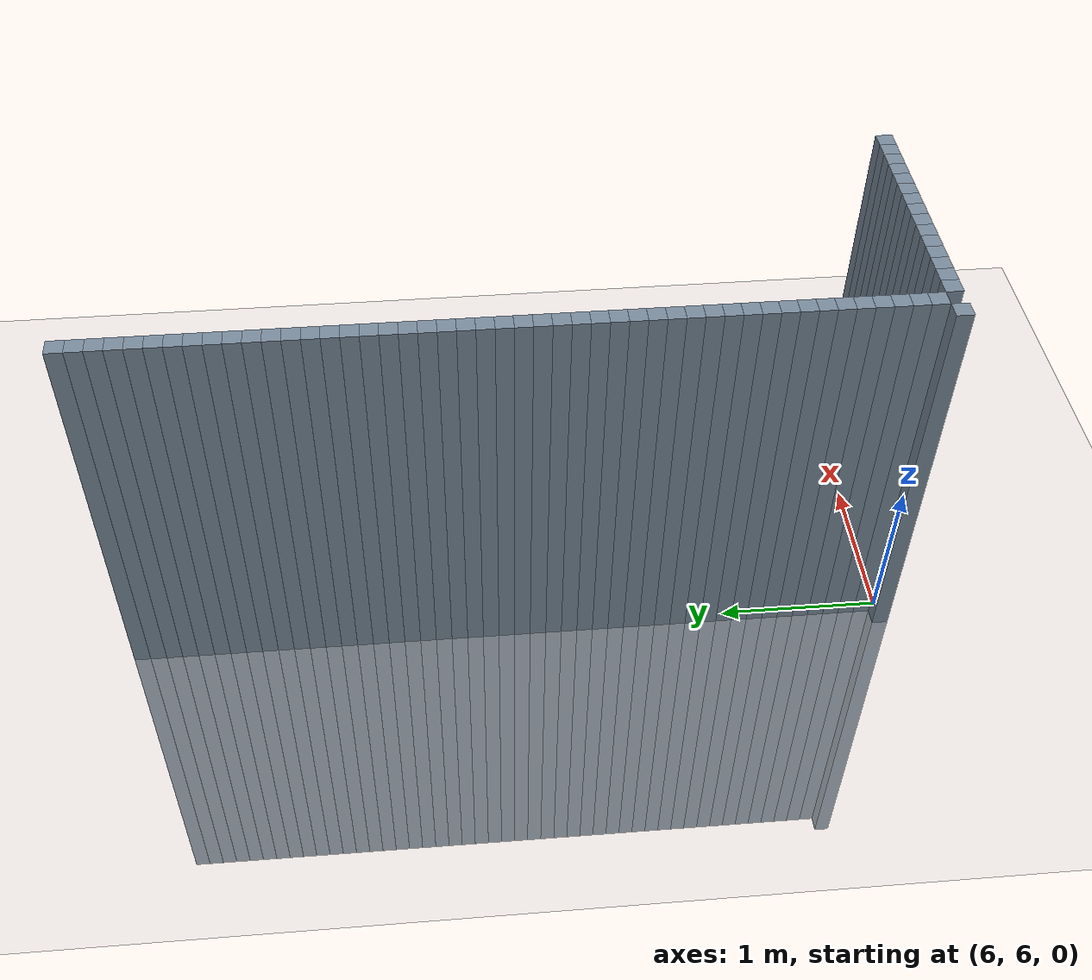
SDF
<sdf version="1.6">
 <world name="default">
  <model name="ground_plane">
   <static>1</static>
   <link name="link">
    <collision name="collision">
     <geometry><plane><normal>0 0 1</normal><size>100 100</size></plane></geometry>
     <surface><friction><ode><mu>100</mu><mu2>50</mu2></ode></friction></surface>
    </collision>
    <visual name="visual">
     <cast_shadows>0</cast_shadows>
     <geometry><plane><normal>0 0 1</normal><size>100 100</size></plane></geometry>
     <material>
      <script><uri>file://media/materials/scripts/gazebo.material</uri><name>Gazebo/Grey</name></script>
     </material>
    </visual>
   </link>
  </model>
  <model name="unit_cylinder_178">
   <static>1</static>
   <pose>5.9 6 0 0 -0 0</pose>
   <link name="link">
    <inertial>
     <mass>1</mass>
     <inertia><ixx>0.145833</ixx><ixy>0</ixy><ixz>0</ixz><iyy>0.145833</iyy><iyz>0</iyz><izz>0.125</izz></inertia>
    </inertial>
    <collision name="collision"><geometry><box><size>0.1 0.1 5</size></box></geometry></collision>
    <visual name="visual">
     <geometry><box><size>0.1 0.1 5</size></box></geometry>
     <material><ambient>0.466667 0.533333 0.6 1</ambient><diffuse>0.466667 0.533333 0.6 1</diffuse></material>
     <material>
      <script><name>Gazebo/Grey</name><uri>file://media/materials/scripts/gazebo.material</uri></script>
     </material>
    </visual>
   </link>
  </model>
  <model name="unit_cylinder_242">
   <static>1</static>
   <pose>6 6.1 0 0 -0 0</pose>
   <link name="link">
    <inertial>
     <mass>1</mass>
     <inertia><ixx>0.145833</ixx><ixy>0</ixy><ixz>0</ixz><iyy>0.145833</iyy><iyz>0</iyz><izz>0.125</izz></inertia>
    </inertial>
    <collision name="collision"><geometry><box><size>0.1 0.1 5</size></box></geometry></collision>
    <visual name="visual">
     <geometry><box><size>0.1 0.1 5</size></box></geometry>
     <material><ambient>0.466667 0.533333 0.6 1</ambient><diffuse>0.466667 0.533333 0.6 1</diffuse></material>
     <material>
      <script><name>Gazebo/Grey</name><uri>file://media/materials/scripts/gazebo.material</uri></script>
     </material>
    </visual>
   </link>
  </model>
  <model name="unit_cylinder_243">
   <static>1</static>
   <pose>6 6.2 0 0 -0 0</pose>
   <link name="link">
    <inertial>
     <mass>1</mass>
     <inertia><ixx>0.145833</ixx><ixy>0</ixy><ixz>0</ixz><iyy>0.145833</iyy><iyz>0</iyz><izz>0.125</izz></inertia>
    </inertial>
    <collision name="collision"><geometry><box><size>0.1 0.1 5</size></box></geometry></collision>
    <visual name="visual">
     <geometry><box><size>0.1 0.1 5</size></box></geometry>
     <material><ambient>0.466667 0.533333 0.6 1</ambient><diffuse>0.466667 0.533333 0.6 1</diffuse></material>
     <material>
      <script><name>Gazebo/Grey</name><uri>file://media/materials/scripts/gazebo.material</uri></script>
     </material>
    </visual>
   </link>
  </model>
  <model name="unit_cylinder_244">
   <static>1</static>
   <pose>6 6.3 0 0 -0 0</pose>
   <link name="link">
    <inertial>
     <mass>1</mass>
     <inertia><ixx>0.145833</ixx><ixy>0</ixy><ixz>0</ixz><iyy>0.145833</iyy><iyz>0</iyz><izz>0.125</izz></inertia>
    </inertial>
    <collision name="collision"><geometry><box><size>0.1 0.1 5</size></box></geometry></collision>
    <visual name="visual">
     <geometry><box><size>0.1 0.1 5</size></box></geometry>
     <material><ambient>0.466667 0.533333 0.6 1</ambient><diffuse>0.466667 0.533333 0.6 1</diffuse></material>
     <material>
      <script><name>Gazebo/Grey</name><uri>file://media/materials/scripts/gazebo.material</uri></script>
     </material>
    </visual>
   </link>
  </model>
  <model name="unit_cylinder_245">
   <static>1</static>
   <pose>6 6.4 0 0 -0 0</pose>
   <link name="link">
    <inertial>
     <mass>1</mass>
     <inertia><ixx>0.145833</ixx><ixy>0</ixy><ixz>0</ixz><iyy>0.145833</iyy><iyz>0</iyz><izz>0.125</izz></inertia>
    </inertial>
    <collision name="collision"><geometry><box><size>0.1 0.1 5</size></box></geometry></collision>
    <visual name="visual">
     <geometry><box><size>0.1 0.1 5</size></box></geometry>
     <material><ambient>0.466667 0.533333 0.6 1</ambient><diffuse>0.466667 0.533333 0.6 1</diffuse></material>
     <material>
      <script><name>Gazebo/Grey</name><uri>file://media/materials/scripts/gazebo.material</uri></script>
     </material>
    </visual>
   </link>
  </model>
  <model name="unit_cylinder_246">
   <static>1</static>
   <pose>6 6.5 0 0 -0 0</pose>
   <link name="link">
    <inertial>
     <mass>1</mass>
     <inertia><ixx>0.145833</ixx><ixy>0</ixy><ixz>0</ixz><iyy>0.145833</iyy><iyz>0</iyz><izz>0.125</izz></inertia>
    </inertial>
    <collision name="collision"><geometry><box><size>0.1 0.1 5</size></box></geometry></collision>
    <visual name="visual">
     <geometry><box><size>0.1 0.1 5</size></box></geometry>
     <material><ambient>0.466667 0.533333 0.6 1</ambient><diffuse>0.466667 0.533333 0.6 1</diffuse></material>
     <material>
      <script><name>Gazebo/Grey</name><uri>file://media/materials/scripts/gazebo.material</uri></script>
     </material>
    </visual>
   </link>
  </model>
  <model name="unit_cylinder_247">
   <static>1</static>
   <pose>6 6.6 0 0 -0 0</pose>
   <link name="link">
    <inertial>
     <mass>1</mass>
     <inertia><ixx>0.145833</ixx><ixy>0</ixy><ixz>0</ixz><iyy>0.145833</iyy><iyz>0</iyz><izz>0.125</izz></inertia>
    </inertial>
    <collision name="collision"><geometry><box><size>0.1 0.1 5</size></box></geometry></collision>
    <visual name="visual">
     <geometry><box><size>0.1 0.1 5</size></box></geometry>
     <material><ambient>0.466667 0.533333 0.6 1</ambient><diffuse>0.466667 0.533333 0.6 1</diffuse></material>
     <material>
      <script><name>Gazebo/Grey</name><uri>file://media/materials/scripts/gazebo.material</uri></script>
     </material>
    </visual>
   </link>
  </model>
  <model name="unit_cylinder_248">
   <static>1</static>
   <pose>6 6.7 0 0 -0 0</pose>
   <link name="link">
    <inertial>
     <mass>1</mass>
     <inertia><ixx>0.145833</ixx><ixy>0</ixy><ixz>0</ixz><iyy>0.145833</iyy><iyz>0</iyz><izz>0.125</izz></inertia>
    </inertial>
    <collision name="collision"><geometry><box><size>0.1 0.1 5</size></box></geometry></collision>
    <visual name="visual">
     <geometry><box><size>0.1 0.1 5</size></box></geometry>
     <material><ambient>0.466667 0.533333 0.6 1</ambient><diffuse>0.466667 0.533333 0.6 1</diffuse></material>
     <material>
      <script><name>Gazebo/Grey</name><uri>file://media/materials/scripts/gazebo.material</uri></script>
     </material>
    </visual>
   </link>
  </model>
  <model name="unit_cylinder_249">
   <static>1</static>
   <pose>6 6.8 0 0 -0 0</pose>
   <link name="link">
    <inertial>
     <mass>1</mass>
     <inertia><ixx>0.145833</ixx><ixy>0</ixy><ixz>0</ixz><iyy>0.145833</iyy><iyz>0</iyz><izz>0.125</izz></inertia>
    </inertial>
    <collision name="collision"><geometry><box><size>0.1 0.1 5</size></box></geometry></collision>
    <visual name="visual">
     <geometry><box><size>0.1 0.1 5</size></box></geometry>
     <material><ambient>0.466667 0.533333 0.6 1</ambient><diffuse>0.466667 0.533333 0.6 1</diffuse></material>
     <material>
      <script><name>Gazebo/Grey</name><uri>file://media/materials/scripts/gazebo.material</uri></script>
     </material>
    </visual>
   </link>
  </model>
  <model name="unit_cylinder_250">
   <static>1</static>
   <pose>6 6.9 0 0 -0 0</pose>
   <link name="link">
    <inertial>
     <mass>1</mass>
     <inertia><ixx>0.145833</ixx><ixy>0</ixy><ixz>0</ixz><iyy>0.145833</iyy><iyz>0</iyz><izz>0.125</izz></inertia>
    </inertial>
    <collision name="collision"><geometry><box><size>0.1 0.1 5</size></box></geometry></collision>
    <visual name="visual">
     <geometry><box><size>0.1 0.1 5</size></box></geometry>
     <material><ambient>0.466667 0.533333 0.6 1</ambient><diffuse>0.466667 0.533333 0.6 1</diffuse></material>
     <material>
      <script><name>Gazebo/Grey</name><uri>file://media/materials/scripts/gazebo.material</uri></script>
     </material>
    </visual>
   </link>
  </model>
  <model name="unit_cylinder_251">
   <static>1</static>
   <pose>6 7 0 0 -0 0</pose>
   <link name="link">
    <inertial>
     <mass>1</mass>
     <inertia><ixx>0.145833</ixx><ixy>0</ixy><ixz>0</ixz><iyy>0.145833</iyy><iyz>0</iyz><izz>0.125</izz></inertia>
    </inertial>
    <collision name="collision"><geometry><box><size>0.1 0.1 5</size></box></geometry></collision>
    <visual name="visual">
     <geometry><box><size>0.1 0.1 5</size></box></geometry>
     <material><ambient>0.466667 0.533333 0.6 1</ambient><diffuse>0.466667 0.533333 0.6 1</diffuse></material>
     <material>
      <script><name>Gazebo/Grey</name><uri>file://media/materials/scripts/gazebo.material</uri></script>
     </material>
    </visual>
   </link>
  </model>
  <model name="unit_cylinder_252">
   <static>1</static>
   <pose>6 7.1 0 0 -0 0</pose>
   <link name="link">
    <inertial>
     <mass>1</mass>
     <inertia><ixx>0.145833</ixx><ixy>0</ixy><ixz>0</ixz><iyy>0.145833</iyy><iyz>0</iyz><izz>0.125</izz></inertia>
    </inertial>
    <collision name="collision"><geometry><box><size>0.1 0.1 5</size></box></geometry></collision>
    <visual name="visual">
     <geometry><box><size>0.1 0.1 5</size></box></geometry>
     <material><ambient>0.466667 0.533333 0.6 1</ambient><diffuse>0.466667 0.533333 0.6 1</diffuse></material>
     <material>
      <script><name>Gazebo/Grey</name><uri>file://media/materials/scripts/gazebo.material</uri></script>
     </material>
    </visual>
   </link>
  </model>
  <model name="unit_cylinder_253">
   <static>1</static>
   <pose>6 7.2 0 0 -0 0</pose>
   <link name="link">
    <inertial>
     <mass>1</mass>
     <inertia><ixx>0.145833</ixx><ixy>0</ixy><ixz>0</ixz><iyy>0.145833</iyy><iyz>0</iyz><izz>0.125</izz></inertia>
    </inertial>
    <collision name="collision"><geometry><box><size>0.1 0.1 5</size></box></geometry></collision>
    <visual name="visual">
     <geometry><box><size>0.1 0.1 5</size></box></geometry>
     <material><ambient>0.466667 0.533333 0.6 1</ambient><diffuse>0.466667 0.533333 0.6 1</diffuse></material>
     <material>
      <script><name>Gazebo/Grey</name><uri>file://media/materials/scripts/gazebo.material</uri></script>
     </material>
    </visual>
   </link>
  </model>
  <model name="unit_cylinder_254">
   <static>1</static>
   <pose>6 7.3 0 0 -0 0</pose>
   <link name="link">
    <inertial>
     <mass>1</mass>
     <inertia><ixx>0.145833</ixx><ixy>0</ixy><ixz>0</ixz><iyy>0.145833</iyy><iyz>0</iyz><izz>0.125</izz></inertia>
    </inertial>
    <collision name="collision"><geometry><box><size>0.1 0.1 5</size></box></geometry></collision>
    <visual name="visual">
     <geometry><box><size>0.1 0.1 5</size></box></geometry>
     <material><ambient>0.466667 0.533333 0.6 1</ambient><diffuse>0.466667 0.533333 0.6 1</diffuse></material>
     <material>
      <script><name>Gazebo/Grey</name><uri>file://media/materials/scripts/gazebo.material</uri></script>
     </material>
    </visual>
   </link>
  </model>
  <model name="unit_cylinder_255">
   <static>1</static>
   <pose>6 7.4 0 0 -0 0</pose>
   <link name="link">
    <inertial>
     <mass>1</mass>
     <inertia><ixx>0.145833</ixx><ixy>0</ixy><ixz>0</ixz><iyy>0.145833</iyy><iyz>0</iyz><izz>0.125</izz></inertia>
    </inertial>
    <collision name="collision"><geometry><box><size>0.1 0.1 5</size></box></geometry></collision>
    <visual name="visual">
     <geometry><box><size>0.1 0.1 5</size></box></geometry>
     <material><ambient>0.466667 0.533333 0.6 1</ambient><diffuse>0.466667 0.533333 0.6 1</diffuse></material>
     <material>
      <script><name>Gazebo/Grey</name><uri>file://media/materials/scripts/gazebo.material</uri></script>
     </material>
    </visual>
   </link>
  </model>
  <model name="unit_cylinder_256">
   <static>1</static>
   <pose>6 7.5 0 0 -0 0</pose>
   <link name="link">
    <inertial>
     <mass>1</mass>
     <inertia><ixx>0.145833</ixx><ixy>0</ixy><ixz>0</ixz><iyy>0.145833</iyy><iyz>0</iyz><izz>0.125</izz></inertia>
    </inertial>
    <collision name="collision"><geometry><box><size>0.1 0.1 5</size></box></geometry></collision>
    <visual name="visual">
     <geometry><box><size>0.1 0.1 5</size></box></geometry>
     <material><ambient>0.466667 0.533333 0.6 1</ambient><diffuse>0.466667 0.533333 0.6 1</diffuse></material>
     <material>
      <script><name>Gazebo/Grey</name><uri>file://media/materials/scripts/gazebo.material</uri></script>
     </material>
    </visual>
   </link>
  </model>
  <model name="unit_cylinder_257">
   <static>1</static>
   <pose>6 7.6 0 0 -0 0</pose>
   <link name="link">
    <inertial>
     <mass>1</mass>
     <inertia><ixx>0.145833</ixx><ixy>0</ixy><ixz>0</ixz><iyy>0.145833</iyy><iyz>0</iyz><izz>0.125</izz></inertia>
    </inertial>
    <collision name="collision"><geometry><box><size>0.1 0.1 5</size></box></geometry></collision>
    <visual name="visual">
     <geometry><box><size>0.1 0.1 5</size></box></geometry>
     <material><ambient>0.466667 0.533333 0.6 1</ambient><diffuse>0.466667 0.533333 0.6 1</diffuse></material>
     <material>
      <script><name>Gazebo/Grey</name><uri>file://media/materials/scripts/gazebo.material</uri></script>
     </material>
    </visual>
   </link>
  </model>
  <model name="unit_cylinder_258">
   <static>1</static>
   <pose>6 7.7 0 0 -0 0</pose>
   <link name="link">
    <inertial>
     <mass>1</mass>
     <inertia><ixx>0.145833</ixx><ixy>0</ixy><ixz>0</ixz><iyy>0.145833</iyy><iyz>0</iyz><izz>0.125</izz></inertia>
    </inertial>
    <collision name="collision"><geometry><box><size>0.1 0.1 5</size></box></geometry></collision>
    <visual name="visual">
     <geometry><box><size>0.1 0.1 5</size></box></geometry>
     <material><ambient>0.466667 0.533333 0.6 1</ambient><diffuse>0.466667 0.533333 0.6 1</diffuse></material>
     <material>
      <script><name>Gazebo/Grey</name><uri>file://media/materials/scripts/gazebo.material</uri></script>
     </material>
    </visual>
   </link>
  </model>
  <model name="unit_cylinder_259">
   <static>1</static>
   <pose>6 7.8 0 0 -0 0</pose>
   <link name="link">
    <inertial>
     <mass>1</mass>
     <inertia><ixx>0.145833</ixx><ixy>0</ixy><ixz>0</ixz><iyy>0.145833</iyy><iyz>0</iyz><izz>0.125</izz></inertia>
    </inertial>
    <collision name="collision"><geometry><box><size>0.1 0.1 5</size></box></geometry></collision>
    <visual name="visual">
     <geometry><box><size>0.1 0.1 5</size></box></geometry>
     <material><ambient>0.466667 0.533333 0.6 1</ambient><diffuse>0.466667 0.533333 0.6 1</diffuse></material>
     <material>
      <script><name>Gazebo/Grey</name><uri>file://media/materials/scripts/gazebo.material</uri></script>
     </material>
    </visual>
   </link>
  </model>
  <model name="unit_cylinder_260">
   <static>1</static>
   <pose>6 7.9 0 0 -0 0</pose>
   <link name="link">
    <inertial>
     <mass>1</mass>
     <inertia><ixx>0.145833</ixx><ixy>0</ixy><ixz>0</ixz><iyy>0.145833</iyy><iyz>0</iyz><izz>0.125</izz></inertia>
    </inertial>
    <collision name="collision"><geometry><box><size>0.1 0.1 5</size></box></geometry></collision>
    <visual name="visual">
     <geometry><box><size>0.1 0.1 5</size></box></geometry>
     <material><ambient>0.466667 0.533333 0.6 1</ambient><diffuse>0.466667 0.533333 0.6 1</diffuse></material>
     <material>
      <script><name>Gazebo/Grey</name><uri>file://media/materials/scripts/gazebo.material</uri></script>
     </material>
    </visual>
   </link>
  </model>
  <model name="unit_cylinder_261">
   <static>1</static>
   <pose>6 8 0 0 -0 0</pose>
   <link name="link">
    <inertial>
     <mass>1</mass>
     <inertia><ixx>0.145833</ixx><ixy>0</ixy><ixz>0</ixz><iyy>0.145833</iyy><iyz>0</iyz><izz>0.125</izz></inertia>
    </inertial>
    <collision name="collision"><geometry><box><size>0.1 0.1 5</size></box></geometry></collision>
    <visual name="visual">
     <geometry><box><size>0.1 0.1 5</size></box></geometry>
     <material><ambient>0.466667 0.533333 0.6 1</ambient><diffuse>0.466667 0.533333 0.6 1</diffuse></material>
     <material>
      <script><name>Gazebo/Grey</name><uri>file://media/materials/scripts/gazebo.material</uri></script>
     </material>
    </visual>
   </link>
  </model>
  <model name="unit_cylinder_262">
   <static>1</static>
   <pose>6 8.1 0 0 -0 0</pose>
   <link name="link">
    <inertial>
     <mass>1</mass>
     <inertia><ixx>0.145833</ixx><ixy>0</ixy><ixz>0</ixz><iyy>0.145833</iyy><iyz>0</iyz><izz>0.125</izz></inertia>
    </inertial>
    <collision name="collision"><geometry><box><size>0.1 0.1 5</size></box></geometry></collision>
    <visual name="visual">
     <geometry><box><size>0.1 0.1 5</size></box></geometry>
     <material><ambient>0.466667 0.533333 0.6 1</ambient><diffuse>0.466667 0.533333 0.6 1</diffuse></material>
     <material>
      <script><name>Gazebo/Grey</name><uri>file://media/materials/scripts/gazebo.material</uri></script>
     </material>
    </visual>
   </link>
  </model>
  <model name="unit_cylinder_263">
   <static>1</static>
   <pose>6 8.2 0 0 -0 0</pose>
   <link name="link">
    <inertial>
     <mass>1</mass>
     <inertia><ixx>0.145833</ixx><ixy>0</ixy><ixz>0</ixz><iyy>0.145833</iyy><iyz>0</iyz><izz>0.125</izz></inertia>
    </inertial>
    <collision name="collision"><geometry><box><size>0.1 0.1 5</size></box></geometry></collision>
    <visual name="visual">
     <geometry><box><size>0.1 0.1 5</size></box></geometry>
     <material><ambient>0.466667 0.533333 0.6 1</ambient><diffuse>0.466667 0.533333 0.6 1</diffuse></material>
     <material>
      <script><name>Gazebo/Grey</name><uri>file://media/materials/scripts/gazebo.material</uri></script>
     </material>
    </visual>
   </link>
  </model>
  <model name="unit_cylinder_264">
   <static>1</static>
   <pose>6 8.3 0 0 -0 0</pose>
   <link name="link">
    <inertial>
     <mass>1</mass>
     <inertia><ixx>0.145833</ixx><ixy>0</ixy><ixz>0</ixz><iyy>0.145833</iyy><iyz>0</iyz><izz>0.125</izz></inertia>
    </inertial>
    <collision name="collision"><geometry><box><size>0.1 0.1 5</size></box></geometry></collision>
    <visual name="visual">
     <geometry><box><size>0.1 0.1 5</size></box></geometry>
     <material><ambient>0.466667 0.533333 0.6 1</ambient><diffuse>0.466667 0.533333 0.6 1</diffuse></material>
     <material>
      <script><name>Gazebo/Grey</name><uri>file://media/materials/scripts/gazebo.material</uri></script>
     </material>
    </visual>
   </link>
  </model>
  <model name="unit_cylinder_265">
   <static>1</static>
   <pose>6 8.4 0 0 -0 0</pose>
   <link name="link">
    <inertial>
     <mass>1</mass>
     <inertia><ixx>0.145833</ixx><ixy>0</ixy><ixz>0</ixz><iyy>0.145833</iyy><iyz>0</iyz><izz>0.125</izz></inertia>
    </inertial>
    <collision name="collision"><geometry><box><size>0.1 0.1 5</size></box></geometry></collision>
    <visual name="visual">
     <geometry><box><size>0.1 0.1 5</size></box></geometry>
     <material><ambient>0.466667 0.533333 0.6 1</ambient><diffuse>0.466667 0.533333 0.6 1</diffuse></material>
     <material>
      <script><name>Gazebo/Grey</name><uri>file://media/materials/scripts/gazebo.material</uri></script>
     </material>
    </visual>
   </link>
  </model>
  <model name="unit_cylinder_266">
   <static>1</static>
   <pose>6 8.5 0 0 -0 0</pose>
   <link name="link">
    <inertial>
     <mass>1</mass>
     <inertia><ixx>0.145833</ixx><ixy>0</ixy><ixz>0</ixz><iyy>0.145833</iyy><iyz>0</iyz><izz>0.125</izz></inertia>
    </inertial>
    <collision name="collision"><geometry><box><size>0.1 0.1 5</size></box></geometry></collision>
    <visual name="visual">
     <geometry><box><size>0.1 0.1 5</size></box></geometry>
     <material><ambient>0.466667 0.533333 0.6 1</ambient><diffuse>0.466667 0.533333 0.6 1</diffuse></material>
     <material>
      <script><name>Gazebo/Grey</name><uri>file://media/materials/scripts/gazebo.material</uri></script>
     </material>
    </visual>
   </link>
  </model>
  <model name="unit_cylinder_267">
   <static>1</static>
   <pose>6 8.6 0 0 -0 0</pose>
   <link name="link">
    <inertial>
     <mass>1</mass>
     <inertia><ixx>0.145833</ixx><ixy>0</ixy><ixz>0</ixz><iyy>0.145833</iyy><iyz>0</iyz><izz>0.125</izz></inertia>
    </inertial>
    <collision name="collision"><geometry><box><size>0.1 0.1 5</size></box></geometry></collision>
    <visual name="visual">
     <geometry><box><size>0.1 0.1 5</size></box></geometry>
     <material><ambient>0.466667 0.533333 0.6 1</ambient><diffuse>0.466667 0.533333 0.6 1</diffuse></material>
     <material>
      <script><name>Gazebo/Grey</name><uri>file://media/materials/scripts/gazebo.material</uri></script>
     </material>
    </visual>
   </link>
  </model>
  <model name="unit_cylinder_268">
   <static>1</static>
   <pose>6 8.7 0 0 -0 0</pose>
   <link name="link">
    <inertial>
     <mass>1</mass>
     <inertia><ixx>0.145833</ixx><ixy>0</ixy><ixz>0</ixz><iyy>0.145833</iyy><iyz>0</iyz><izz>0.125</izz></inertia>
    </inertial>
    <collision name="collision"><geometry><box><size>0.1 0.1 5</size></box></geometry></collision>
    <visual name="visual">
     <geometry><box><size>0.1 0.1 5</size></box></geometry>
     <material><ambient>0.466667 0.533333 0.6 1</ambient><diffuse>0.466667 0.533333 0.6 1</diffuse></material>
     <material>
      <script><name>Gazebo/Grey</name><uri>file://media/materials/scripts/gazebo.material</uri></script>
     </material>
    </visual>
   </link>
  </model>
  <model name="unit_cylinder_269">
   <static>1</static>
   <pose>6 8.8 0 0 -0 0</pose>
   <link name="link">
    <inertial>
     <mass>1</mass>
     <inertia><ixx>0.145833</ixx><ixy>0</ixy><ixz>0</ixz><iyy>0.145833</iyy><iyz>0</iyz><izz>0.125</izz></inertia>
    </inertial>
    <collision name="collision"><geometry><box><size>0.1 0.1 5</size></box></geometry></collision>
    <visual name="visual">
     <geometry><box><size>0.1 0.1 5</size></box></geometry>
     <material><ambient>0.466667 0.533333 0.6 1</ambient><diffuse>0.466667 0.533333 0.6 1</diffuse></material>
     <material>
      <script><name>Gazebo/Grey</name><uri>file://media/materials/scripts/gazebo.material</uri></script>
     </material>
    </visual>
   </link>
  </model>
  <model name="unit_cylinder_270">
   <static>1</static>
   <pose>6 8.9 0 0 -0 0</pose>
   <link name="link">
    <inertial>
     <mass>1</mass>
     <inertia><ixx>0.145833</ixx><ixy>0</ixy><ixz>0</ixz><iyy>0.145833</iyy><iyz>0</iyz><izz>0.125</izz></inertia>
    </inertial>
    <collision name="collision"><geometry><box><size>0.1 0.1 5</size></box></geometry></collision>
    <visual name="visual">
     <geometry><box><size>0.1 0.1 5</size></box></geometry>
     <material><ambient>0.466667 0.533333 0.6 1</ambient><diffuse>0.466667 0.533333 0.6 1</diffuse></material>
     <material>
      <script><name>Gazebo/Grey</name><uri>file://media/materials/scripts/gazebo.material</uri></script>
     </material>
    </visual>
   </link>
  </model>
  <model name="unit_cylinder_271">
   <static>1</static>
   <pose>6 9 0 0 -0 0</pose>
   <link name="link">
    <inertial>
     <mass>1</mass>
     <inertia><ixx>0.145833</ixx><ixy>0</ixy><ixz>0</ixz><iyy>0.145833</iyy><iyz>0</iyz><izz>0.125</izz></inertia>
    </inertial>
    <collision name="collision"><geometry><box><size>0.1 0.1 5</size></box></geometry></collision>
    <visual name="visual">
     <geometry><box><size>0.1 0.1 5</size></box></geometry>
     <material><ambient>0.466667 0.533333 0.6 1</ambient><diffuse>0.466667 0.533333 0.6 1</diffuse></material>
     <material>
      <script><name>Gazebo/Grey</name><uri>file://media/materials/scripts/gazebo.material</uri></script>
     </material>
    </visual>
   </link>
  </model>
  <model name="unit_cylinder_272">
   <static>1</static>
   <pose>6 9.1 0 0 -0 0</pose>
   <link name="link">
    <inertial>
     <mass>1</mass>
     <inertia><ixx>0.145833</ixx><ixy>0</ixy><ixz>0</ixz><iyy>0.145833</iyy><iyz>0</iyz><izz>0.125</izz></inertia>
    </inertial>
    <collision name="collision"><geometry><box><size>0.1 0.1 5</size></box></geometry></collision>
    <visual name="visual">
     <geometry><box><size>0.1 0.1 5</size></box></geometry>
     <material><ambient>0.466667 0.533333 0.6 1</ambient><diffuse>0.466667 0.533333 0.6 1</diffuse></material>
     <material>
      <script><name>Gazebo/Grey</name><uri>file://media/materials/scripts/gazebo.material</uri></script>
     </material>
    </visual>
   </link>
  </model>
  <model name="unit_cylinder_273">
   <static>1</static>
   <pose>6 9.2 0 0 -0 0</pose>
   <link name="link">
    <inertial>
     <mass>1</mass>
     <inertia><ixx>0.145833</ixx><ixy>0</ixy><ixz>0</ixz><iyy>0.145833</iyy><iyz>0</iyz><izz>0.125</izz></inertia>
    </inertial>
    <collision name="collision"><geometry><box><size>0.1 0.1 5</size></box></geometry></collision>
    <visual name="visual">
     <geometry><box><size>0.1 0.1 5</size></box></geometry>
     <material><ambient>0.466667 0.533333 0.6 1</ambient><diffuse>0.466667 0.533333 0.6 1</diffuse></material>
     <material>
      <script><name>Gazebo/Grey</name><uri>file://media/materials/scripts/gazebo.material</uri></script>
     </material>
    </visual>
   </link>
  </model>
  <model name="unit_cylinder_274">
   <static>1</static>
   <pose>6 9.3 0 0 -0 0</pose>
   <link name="link">
    <inertial>
     <mass>1</mass>
     <inertia><ixx>0.145833</ixx><ixy>0</ixy><ixz>0</ixz><iyy>0.145833</iyy><iyz>0</iyz><izz>0.125</izz></inertia>
    </inertial>
    <collision name="collision"><geometry><box><size>0.1 0.1 5</size></box></geometry></collision>
    <visual name="visual">
     <geometry><box><size>0.1 0.1 5</size></box></geometry>
     <material><ambient>0.466667 0.533333 0.6 1</ambient><diffuse>0.466667 0.533333 0.6 1</diffuse></material>
     <material>
      <script><name>Gazebo/Grey</name><uri>file://media/materials/scripts/gazebo.material</uri></script>
     </material>
    </visual>
   </link>
  </model>
  <model name="unit_cylinder_275">
   <static>1</static>
   <pose>6 9.4 0 0 -0 0</pose>
   <link name="link">
    <inertial>
     <mass>1</mass>
     <inertia><ixx>0.145833</ixx><ixy>0</ixy><ixz>0</ixz><iyy>0.145833</iyy><iyz>0</iyz><izz>0.125</izz></inertia>
    </inertial>
    <collision name="collision"><geometry><box><size>0.1 0.1 5</size></box></geometry></collision>
    <visual name="visual">
     <geometry><box><size>0.1 0.1 5</size></box></geometry>
     <material><ambient>0.466667 0.533333 0.6 1</ambient><diffuse>0.466667 0.533333 0.6 1</diffuse></material>
     <material>
      <script><name>Gazebo/Grey</name><uri>file://media/materials/scripts/gazebo.material</uri></script>
     </material>
    </visual>
   </link>
  </model>
  <model name="unit_cylinder_276">
   <static>1</static>
   <pose>6 9.5 0 0 -0 0</pose>
   <link name="link">
    <inertial>
     <mass>1</mass>
     <inertia><ixx>0.145833</ixx><ixy>0</ixy><ixz>0</ixz><iyy>0.145833</iyy><iyz>0</iyz><izz>0.125</izz></inertia>
    </inertial>
    <collision name="collision"><geometry><box><size>0.1 0.1 5</size></box></geometry></collision>
    <visual name="visual">
     <geometry><box><size>0.1 0.1 5</size></box></geometry>
     <material><ambient>0.466667 0.533333 0.6 1</ambient><diffuse>0.466667 0.533333 0.6 1</diffuse></material>
     <material>
      <script><name>Gazebo/Grey</name><uri>file://media/materials/scripts/gazebo.material</uri></script>
     </material>
    </visual>
   </link>
  </model>
  <model name="unit_cylinder_277">
   <static>1</static>
   <pose>6 9.6 0 0 -0 0</pose>
   <link name="link">
    <inertial>
     <mass>1</mass>
     <inertia><ixx>0.145833</ixx><ixy>0</ixy><ixz>0</ixz><iyy>0.145833</iyy><iyz>0</iyz><izz>0.125</izz></inertia>
    </inertial>
    <collision name="collision"><geometry><box><size>0.1 0.1 5</size></box></geometry></collision>
    <visual name="visual">
     <geometry><box><size>0.1 0.1 5</size></box></geometry>
     <material><ambient>0.466667 0.533333 0.6 1</ambient><diffuse>0.466667 0.533333 0.6 1</diffuse></material>
     <material>
      <script><name>Gazebo/Grey</name><uri>file://media/materials/scripts/gazebo.material</uri></script>
     </material>
    </visual>
   </link>
  </model>
  <model name="unit_cylinder_278">
   <static>1</static>
   <pose>6 9.7 0 0 -0 0</pose>
   <link name="link">
    <inertial>
     <mass>1</mass>
     <inertia><ixx>0.145833</ixx><ixy>0</ixy><ixz>0</ixz><iyy>0.145833</iyy><iyz>0</iyz><izz>0.125</izz></inertia>
    </inertial>
    <collision name="collision"><geometry><box><size>0.1 0.1 5</size></box></geometry></collision>
    <visual name="visual">
     <geometry><box><size>0.1 0.1 5</size></box></geometry>
     <material><ambient>0.466667 0.533333 0.6 1</ambient><diffuse>0.466667 0.533333 0.6 1</diffuse></material>
     <material>
      <script><name>Gazebo/Grey</name><uri>file://media/materials/scripts/gazebo.material</uri></script>
     </material>
    </visual>
   </link>
  </model>
  <model name="unit_cylinder_279">
   <static>1</static>
   <pose>6 9.8 0 0 -0 0</pose>
   <link name="link">
    <inertial>
     <mass>1</mass>
     <inertia><ixx>0.145833</ixx><ixy>0</ixy><ixz>0</ixz><iyy>0.145833</iyy><iyz>0</iyz><izz>0.125</izz></inertia>
    </inertial>
    <collision name="collision"><geometry><box><size>0.1 0.1 5</size></box></geometry></collision>
    <visual name="visual">
     <geometry><box><size>0.1 0.1 5</size></box></geometry>
     <material><ambient>0.466667 0.533333 0.6 1</ambient><diffuse>0.466667 0.533333 0.6 1</diffuse></material>
     <material>
      <script><name>Gazebo/Grey</name><uri>file://media/materials/scripts/gazebo.material</uri></script>
     </material>
    </visual>
   </link>
  </model>
  <model name="unit_cylinder_280">
   <static>1</static>
   <pose>6 9.9 0 0 -0 0</pose>
   <link name="link">
    <inertial>
     <mass>1</mass>
     <inertia><ixx>0.145833</ixx><ixy>0</ixy><ixz>0</ixz><iyy>0.145833</iyy><iyz>0</iyz><izz>0.125</izz></inertia>
    </inertial>
    <collision name="collision"><geometry><box><size>0.1 0.1 5</size></box></geometry></collision>
    <visual name="visual">
     <geometry><box><size>0.1 0.1 5</size></box></geometry>
     <material><ambient>0.466667 0.533333 0.6 1</ambient><diffuse>0.466667 0.533333 0.6 1</diffuse></material>
     <material>
      <script><name>Gazebo/Grey</name><uri>file://media/materials/scripts/gazebo.material</uri></script>
     </material>
    </visual>
   </link>
  </model>
  <model name="unit_cylinder_281">
   <static>1</static>
   <pose>6 10 0 0 -0 0</pose>
   <link name="link">
    <inertial>
     <mass>1</mass>
     <inertia><ixx>0.145833</ixx><ixy>0</ixy><ixz>0</ixz><iyy>0.145833</iyy><iyz>0</iyz><izz>0.125</izz></inertia>
    </inertial>
    <collision name="collision"><geometry><box><size>0.1 0.1 5</size></box></geometry></collision>
    <visual name="visual">
     <geometry><box><size>0.1 0.1 5</size></box></geometry>
     <material><ambient>0.466667 0.533333 0.6 1</ambient><diffuse>0.466667 0.533333 0.6 1</diffuse></material>
     <material>
      <script><name>Gazebo/Grey</name><uri>file://media/materials/scripts/gazebo.material</uri></script>
     </material>
    </visual>
   </link>
  </model>
  <model name="unit_cylinder_282">
   <static>1</static>
   <pose>6 10.1 0 0 -0 0</pose>
   <link name="link">
    <inertial>
     <mass>1</mass>
     <inertia><ixx>0.145833</ixx><ixy>0</ixy><ixz>0</ixz><iyy>0.145833</iyy><iyz>0</iyz><izz>0.125</izz></inertia>
    </inertial>
    <collision name="collision"><geometry><box><size>0.1 0.1 5</size></box></geometry></collision>
    <visual name="visual">
     <geometry><box><size>0.1 0.1 5</size></box></geometry>
     <material><ambient>0.466667 0.533333 0.6 1</ambient><diffuse>0.466667 0.533333 0.6 1</diffuse></material>
     <material>
      <script><name>Gazebo/Grey</name><uri>file://media/materials/scripts/gazebo.material</uri></script>
     </material>
    </visual>
   </link>
  </model>
  <model name="unit_cylinder_283">
   <static>1</static>
   <pose>6 10.2 0 0 -0 0</pose>
   <link name="link">
    <inertial>
     <mass>1</mass>
     <inertia><ixx>0.145833</ixx><ixy>0</ixy><ixz>0</ixz><iyy>0.145833</iyy><iyz>0</iyz><izz>0.125</izz></inertia>
    </inertial>
    <collision name="collision"><geometry><box><size>0.1 0.1 5</size></box></geometry></collision>
    <visual name="visual">
     <geometry><box><size>0.1 0.1 5</size></box></geometry>
     <material><ambient>0.466667 0.533333 0.6 1</ambient><diffuse>0.466667 0.533333 0.6 1</diffuse></material>
     <material>
      <script><name>Gazebo/Grey</name><uri>file://media/materials/scripts/gazebo.material</uri></script>
     </material>
    </visual>
   </link>
  </model>
  <model name="unit_cylinder_284">
   <static>1</static>
   <pose>6 10.3 0 0 -0 0</pose>
   <link name="link">
    <inertial>
     <mass>1</mass>
     <inertia><ixx>0.145833</ixx><ixy>0</ixy><ixz>0</ixz><iyy>0.145833</iyy><iyz>0</iyz><izz>0.125</izz></inertia>
    </inertial>
    <collision name="collision"><geometry><box><size>0.1 0.1 5</size></box></geometry></collision>
    <visual name="visual">
     <geometry><box><size>0.1 0.1 5</size></box></geometry>
     <material><ambient>0.466667 0.533333 0.6 1</ambient><diffuse>0.466667 0.533333 0.6 1</diffuse></material>
     <material>
      <script><name>Gazebo/Grey</name><uri>file://media/materials/scripts/gazebo.material</uri></script>
     </material>
    </visual>
   </link>
  </model>
  <model name="unit_cylinder_285">
   <static>1</static>
   <pose>6 10.4 0 0 -0 0</pose>
   <link name="link">
    <inertial>
     <mass>1</mass>
     <inertia><ixx>0.145833</ixx><ixy>0</ixy><ixz>0</ixz><iyy>0.145833</iyy><iyz>0</iyz><izz>0.125</izz></inertia>
    </inertial>
    <collision name="collision"><geometry><box><size>0.1 0.1 5</size></box></geometry></collision>
    <visual name="visual">
     <geometry><box><size>0.1 0.1 5</size></box></geometry>
     <material><ambient>0.466667 0.533333 0.6 1</ambient><diffuse>0.466667 0.533333 0.6 1</diffuse></material>
     <material>
      <script><name>Gazebo/Grey</name><uri>file://media/materials/scripts/gazebo.material</uri></script>
     </material>
    </visual>
   </link>
  </model>
  <model name="unit_cylinder_286">
   <static>1</static>
   <pose>6 10.5 0 0 -0 0</pose>
   <link name="link">
    <inertial>
     <mass>1</mass>
     <inertia><ixx>0.145833</ixx><ixy>0</ixy><ixz>0</ixz><iyy>0.145833</iyy><iyz>0</iyz><izz>0.125</izz></inertia>
    </inertial>
    <collision name="collision"><geometry><box><size>0.1 0.1 5</size></box></geometry></collision>
    <visual name="visual">
     <geometry><box><size>0.1 0.1 5</size></box></geometry>
     <material><ambient>0.466667 0.533333 0.6 1</ambient><diffuse>0.466667 0.533333 0.6 1</diffuse></material>
     <material>
      <script><name>Gazebo/Grey</name><uri>file://media/materials/scripts/gazebo.material</uri></script>
     </material>
    </visual>
   </link>
  </model>
  <model name="unit_cylinder_287">
   <static>1</static>
   <pose>6 10.6 0 0 -0 0</pose>
   <link name="link">
    <inertial>
     <mass>1</mass>
     <inertia><ixx>0.145833</ixx><ixy>0</ixy><ixz>0</ixz><iyy>0.145833</iyy><iyz>0</iyz><izz>0.125</izz></inertia>
    </inertial>
    <collision name="collision"><geometry><box><size>0.1 0.1 5</size></box></geometry></collision>
    <visual name="visual">
     <geometry><box><size>0.1 0.1 5</size></box></geometry>
     <material><ambient>0.466667 0.533333 0.6 1</ambient><diffuse>0.466667 0.533333 0.6 1</diffuse></material>
     <material>
      <script><name>Gazebo/Grey</name><uri>file://media/materials/scripts/gazebo.material</uri></script>
     </material>
    </visual>
   </link>
  </model>
  <model name="unit_cylinder_288">
   <static>1</static>
   <pose>6 10.7 0 0 -0 0</pose>
   <link name="link">
    <inertial>
     <mass>1</mass>
     <inertia><ixx>0.145833</ixx><ixy>0</ixy><ixz>0</ixz><iyy>0.145833</iyy><iyz>0</iyz><izz>0.125</izz></inertia>
    </inertial>
    <collision name="collision"><geometry><box><size>0.1 0.1 5</size></box></geometry></collision>
    <visual name="visual">
     <geometry><box><size>0.1 0.1 5</size></box></geometry>
     <material><ambient>0.466667 0.533333 0.6 1</ambient><diffuse>0.466667 0.533333 0.6 1</diffuse></material>
     <material>
      <script><name>Gazebo/Grey</name><uri>file://media/materials/scripts/gazebo.material</uri></script>
     </material>
    </visual>
   </link>
  </model>
  <model name="unit_cylinder_363">
   <static>1</static>
   <pose>6.1 6 0 0 -0 0</pose>
   <link name="link">
    <inertial>
     <mass>1</mass>
     <inertia><ixx>0.145833</ixx><ixy>0</ixy><ixz>0</ixz><iyy>0.145833</iyy><iyz>0</iyz><izz>0.125</izz></inertia>
    </inertial>
    <collision name="collision"><geometry><box><size>0.1 0.1 5</size></box></geometry></collision>
    <visual name="visual">
     <geometry><box><size>0.1 0.1 5</size></box></geometry>
     <material><ambient>0.466667 0.533333 0.6 1</ambient><diffuse>0.466667 0.533333 0.6 1</diffuse></material>
     <material>
      <script><name>Gazebo/Grey</name><uri>file://media/materials/scripts/gazebo.material</uri></script>
     </material>
    </visual>
   </link>
  </model>
  <model name="unit_cylinder_367">
   <static>1</static>
   <pose>6.2 6 0 0 -0 0</pose>
   <link name="link">
    <inertial>
     <mass>1</mass>
     <inertia><ixx>0.145833</ixx><ixy>0</ixy><ixz>0</ixz><iyy>0.145833</iyy><iyz>0</iyz><izz>0.125</izz></inertia>
    </inertial>
    <collision name="collision"><geometry><box><size>0.1 0.1 5</size></box></geometry></collision>
    <visual name="visual">
     <geometry><box><size>0.1 0.1 5</size></box></geometry>
     <material><ambient>0.466667 0.533333 0.6 1</ambient><diffuse>0.466667 0.533333 0.6 1</diffuse></material>
     <material>
      <script><name>Gazebo/Grey</name><uri>file://media/materials/scripts/gazebo.material</uri></script>
     </material>
    </visual>
   </link>
  </model>
  <model name="unit_cylinder_371">
   <static>1</static>
   <pose>6.3 6 0 0 -0 0</pose>
   <link name="link">
    <inertial>
     <mass>1</mass>
     <inertia><ixx>0.145833</ixx><ixy>0</ixy><ixz>0</ixz><iyy>0.145833</iyy><iyz>0</iyz><izz>0.125</izz></inertia>
    </inertial>
    <collision name="collision"><geometry><box><size>0.1 0.1 5</size></box></geometry></collision>
    <visual name="visual">
     <geometry><box><size>0.1 0.1 5</size></box></geometry>
     <material><ambient>0.466667 0.533333 0.6 1</ambient><diffuse>0.466667 0.533333 0.6 1</diffuse></material>
     <material>
      <script><name>Gazebo/Grey</name><uri>file://media/materials/scripts/gazebo.material</uri></script>
     </material>
    </visual>
   </link>
  </model>
  <model name="unit_cylinder_375">
   <static>1</static>
   <pose>6.4 6 0 0 -0 0</pose>
   <link name="link">
    <inertial>
     <mass>1</mass>
     <inertia><ixx>0.145833</ixx><ixy>0</ixy><ixz>0</ixz><iyy>0.145833</iyy><iyz>0</iyz><izz>0.125</izz></inertia>
    </inertial>
    <collision name="collision"><geometry><box><size>0.1 0.1 5</size></box></geometry></collision>
    <visual name="visual">
     <geometry><box><size>0.1 0.1 5</size></box></geometry>
     <material><ambient>0.466667 0.533333 0.6 1</ambient><diffuse>0.466667 0.533333 0.6 1</diffuse></material>
     <material>
      <script><name>Gazebo/Grey</name><uri>file://media/materials/scripts/gazebo.material</uri></script>
     </material>
    </visual>
   </link>
  </model>
  <model name="unit_cylinder_379">
   <static>1</static>
   <pose>6.5 6 0 0 -0 0</pose>
   <link name="link">
    <inertial>
     <mass>1</mass>
     <inertia><ixx>0.145833</ixx><ixy>0</ixy><ixz>0</ixz><iyy>0.145833</iyy><iyz>0</iyz><izz>0.125</izz></inertia>
    </inertial>
    <collision name="collision"><geometry><box><size>0.1 0.1 5</size></box></geometry></collision>
    <visual name="visual">
     <geometry><box><size>0.1 0.1 5</size></box></geometry>
     <material><ambient>0.466667 0.533333 0.6 1</ambient><diffuse>0.466667 0.533333 0.6 1</diffuse></material>
     <material>
      <script><name>Gazebo/Grey</name><uri>file://media/materials/scripts/gazebo.material</uri></script>
     </material>
    </visual>
   </link>
  </model>
  <model name="unit_cylinder_383">
   <static>1</static>
   <pose>6.6 6 0 0 -0 0</pose>
   <link name="link">
    <inertial>
     <mass>1</mass>
     <inertia><ixx>0.145833</ixx><ixy>0</ixy><ixz>0</ixz><iyy>0.145833</iyy><iyz>0</iyz><izz>0.125</izz></inertia>
    </inertial>
    <collision name="collision"><geometry><box><size>0.1 0.1 5</size></box></geometry></collision>
    <visual name="visual">
     <geometry><box><size>0.1 0.1 5</size></box></geometry>
     <material><ambient>0.466667 0.533333 0.6 1</ambient><diffuse>0.466667 0.533333 0.6 1</diffuse></material>
     <material>
      <script><name>Gazebo/Grey</name><uri>file://media/materials/scripts/gazebo.material</uri></script>
     </material>
    </visual>
   </link>
  </model>
  <model name="unit_cylinder_387">
   <static>1</static>
   <pose>6.7 6 0 0 -0 0</pose>
   <link name="link">
    <inertial>
     <mass>1</mass>
     <inertia><ixx>0.145833</ixx><ixy>0</ixy><ixz>0</ixz><iyy>0.145833</iyy><iyz>0</iyz><izz>0.125</izz></inertia>
    </inertial>
    <collision name="collision"><geometry><box><size>0.1 0.1 5</size></box></geometry></collision>
    <visual name="visual">
     <geometry><box><size>0.1 0.1 5</size></box></geometry>
     <material><ambient>0.466667 0.533333 0.6 1</ambient><diffuse>0.466667 0.533333 0.6 1</diffuse></material>
     <material>
      <script><name>Gazebo/Grey</name><uri>file://media/materials/scripts/gazebo.material</uri></script>
     </material>
    </visual>
   </link>
  </model>
  <model name="unit_cylinder_391">
   <static>1</static>
   <pose>6.8 6 0 0 -0 0</pose>
   <link name="link">
    <inertial>
     <mass>1</mass>
     <inertia><ixx>0.145833</ixx><ixy>0</ixy><ixz>0</ixz><iyy>0.145833</iyy><iyz>0</iyz><izz>0.125</izz></inertia>
    </inertial>
    <collision name="collision"><geometry><box><size>0.1 0.1 5</size></box></geometry></collision>
    <visual name="visual">
     <geometry><box><size>0.1 0.1 5</size></box></geometry>
     <material><ambient>0.466667 0.533333 0.6 1</ambient><diffuse>0.466667 0.533333 0.6 1</diffuse></material>
     <material>
      <script><name>Gazebo/Grey</name><uri>file://media/materials/scripts/gazebo.material</uri></script>
     </material>
    </visual>
   </link>
  </model>
  <model name="unit_cylinder_395">
   <static>1</static>
   <pose>6.9 6 0 0 -0 0</pose>
   <link name="link">
    <inertial>
     <mass>1</mass>
     <inertia><ixx>0.145833</ixx><ixy>0</ixy><ixz>0</ixz><iyy>0.145833</iyy><iyz>0</iyz><izz>0.125</izz></inertia>
    </inertial>
    <collision name="collision"><geometry><box><size>0.1 0.1 5</size></box></geometry></collision>
    <visual name="visual">
     <geometry><box><size>0.1 0.1 5</size></box></geometry>
     <material><ambient>0.466667 0.533333 0.6 1</ambient><diffuse>0.466667 0.533333 0.6 1</diffuse></material>
     <material>
      <script><name>Gazebo/Grey</name><uri>file://media/materials/scripts/gazebo.material</uri></script>
     </material>
    </visual>
   </link>
  </model>
  <model name="unit_cylinder_399">
   <static>1</static>
   <pose>7 6 0 0 -0 0</pose>
   <link name="link">
    <inertial>
     <mass>1</mass>
     <inertia><ixx>0.145833</ixx><ixy>0</ixy><ixz>0</ixz><iyy>0.145833</iyy><iyz>0</iyz><izz>0.125</izz></inertia>
    </inertial>
    <collision name="collision"><geometry><box><size>0.1 0.1 5</size></box></geometry></collision>
    <visual name="visual">
     <geometry><box><size>0.1 0.1 5</size></box></geometry>
     <material><ambient>0.466667 0.533333 0.6 1</ambient><diffuse>0.466667 0.533333 0.6 1</diffuse></material>
     <material>
      <script><name>Gazebo/Grey</name><uri>file://media/materials/scripts/gazebo.material</uri></script>
     </material>
    </visual>
   </link>
  </model>
  <model name="unit_cylinder_403">
   <static>1</static>
   <pose>7.1 6 0 0 -0 0</pose>
   <link name="link">
    <inertial>
     <mass>1</mass>
     <inertia><ixx>0.145833</ixx><ixy>0</ixy><ixz>0</ixz><iyy>0.145833</iyy><iyz>0</iyz><izz>0.125</izz></inertia>
    </inertial>
    <collision name="collision"><geometry><box><size>0.1 0.1 5</size></box></geometry></collision>
    <visual name="visual">
     <geometry><box><size>0.1 0.1 5</size></box></geometry>
     <material><ambient>0.466667 0.533333 0.6 1</ambient><diffuse>0.466667 0.533333 0.6 1</diffuse></material>
     <material>
      <script><name>Gazebo/Grey</name><uri>file://media/materials/scripts/gazebo.material</uri></script>
     </material>
    </visual>
   </link>
  </model>
  <model name="unit_cylinder_407">
   <static>1</static>
   <pose>7.2 6 0 0 -0 0</pose>
   <link name="link">
    <inertial>
     <mass>1</mass>
     <inertia><ixx>0.145833</ixx><ixy>0</ixy><ixz>0</ixz><iyy>0.145833</iyy><iyz>0</iyz><izz>0.125</izz></inertia>
    </inertial>
    <collision name="collision"><geometry><box><size>0.1 0.1 5</size></box></geometry></collision>
    <visual name="visual">
     <geometry><box><size>0.1 0.1 5</size></box></geometry>
     <material><ambient>0.466667 0.533333 0.6 1</ambient><diffuse>0.466667 0.533333 0.6 1</diffuse></material>
     <material>
      <script><name>Gazebo/Grey</name><uri>file://media/materials/scripts/gazebo.material</uri></script>
     </material>
    </visual>
   </link>
  </model>
  <model name="unit_cylinder_411">
   <static>1</static>
   <pose>7.3 6 0 0 -0 0</pose>
   <link name="link">
    <inertial>
     <mass>1</mass>
     <inertia><ixx>0.145833</ixx><ixy>0</ixy><ixz>0</ixz><iyy>0.145833</iyy><iyz>0</iyz><izz>0.125</izz></inertia>
    </inertial>
    <collision name="collision"><geometry><box><size>0.1 0.1 5</size></box></geometry></collision>
    <visual name="visual">
     <geometry><box><size>0.1 0.1 5</size></box></geometry>
     <material><ambient>0.466667 0.533333 0.6 1</ambient><diffuse>0.466667 0.533333 0.6 1</diffuse></material>
     <material>
      <script><name>Gazebo/Grey</name><uri>file://media/materials/scripts/gazebo.material</uri></script>
     </material>
    </visual>
   </link>
  </model>
  <model name="unit_cylinder_415">
   <static>1</static>
   <pose>7.4 6 0 0 -0 0</pose>
   <link name="link">
    <inertial>
     <mass>1</mass>
     <inertia><ixx>0.145833</ixx><ixy>0</ixy><ixz>0</ixz><iyy>0.145833</iyy><iyz>0</iyz><izz>0.125</izz></inertia>
    </inertial>
    <collision name="collision"><geometry><box><size>0.1 0.1 5</size></box></geometry></collision>
    <visual name="visual">
     <geometry><box><size>0.1 0.1 5</size></box></geometry>
     <material><ambient>0.466667 0.533333 0.6 1</ambient><diffuse>0.466667 0.533333 0.6 1</diffuse></material>
     <material>
      <script><name>Gazebo/Grey</name><uri>file://media/materials/scripts/gazebo.material</uri></script>
     </material>
    </visual>
   </link>
  </model>
  <model name="unit_cylinder_419">
   <static>1</static>
   <pose>7.5 6 0 0 -0 0</pose>
   <link name="link">
    <inertial>
     <mass>1</mass>
     <inertia><ixx>0.145833</ixx><ixy>0</ixy><ixz>0</ixz><iyy>0.145833</iyy><iyz>0</iyz><izz>0.125</izz></inertia>
    </inertial>
    <collision name="collision"><geometry><box><size>0.1 0.1 5</size></box></geometry></collision>
    <visual name="visual">
     <geometry><box><size>0.1 0.1 5</size></box></geometry>
     <material><ambient>0.466667 0.533333 0.6 1</ambient><diffuse>0.466667 0.533333 0.6 1</diffuse></material>
     <material>
      <script><name>Gazebo/Grey</name><uri>file://media/materials/scripts/gazebo.material</uri></script>
     </material>
    </visual>
   </link>
  </model>
 </world>
</sdf>
